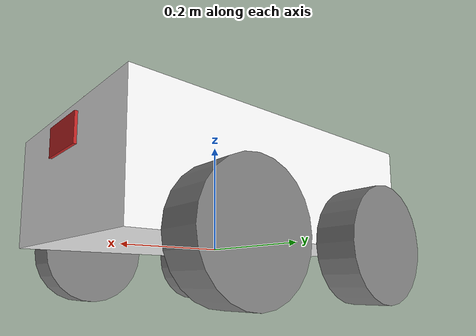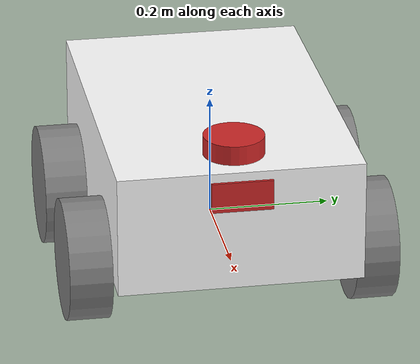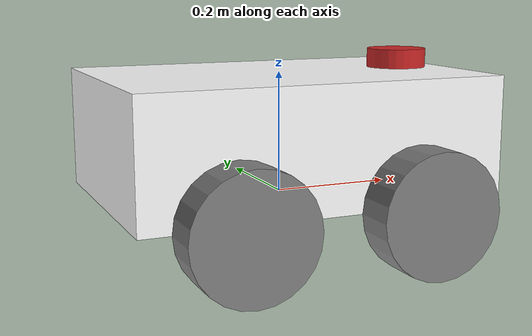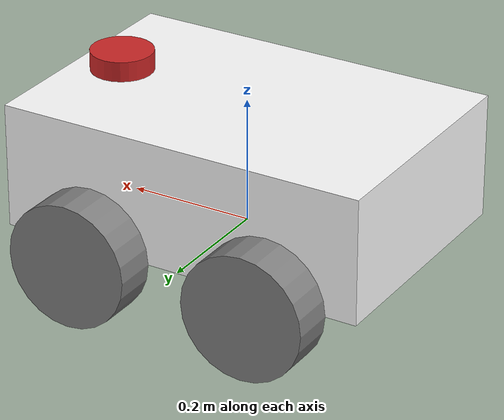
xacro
<?xml version="1.0"?>
<robot name="my_robot" xmlns:xacro="https://www.ros.org/wiki/xacro" >

    <xacro:include filename="common_properties.xacro" />
	<xacro:include filename="navcon_control.xacro" />

    <xacro:include filename="camera.xacro" />
    <xacro:include filename="laser.xacro" />

    <xacro:property name="base_length" value="0.6" />
    <xacro:property name="base_width" value="0.4" />
    <xacro:property name="base_height" value="0.2" />
    <xacro:property name="wheel_radius" value="0.1" />
    <xacro:property name="wheel_length" value="0.07" />

    <link name="base_footprint" />

    <link name="base_link">
        <visual>
            <geometry>
                <box size="${base_length} ${base_width} ${base_height}" />
            </geometry>
            <origin xyz="0 0 ${base_height / 2.0}" rpy="0 0 0" />
            <material name="white" />
        </visual>
        <collision>
            <geometry>
                <box size="${base_length} ${base_width} ${base_height}" />
            </geometry>
            <origin xyz="0 0 ${base_height / 2.0}" rpy="0 0 0" />
        </collision>
        <xacro:box_inertia m="5.0" l="${2*base_length}" w="${2*base_width}" h="${2*base_height}"
                           xyz="0 0 ${base_height / 2.0}" rpy="0 0 0" />
    </link>
    <xacro:macro name="wheel_link" params="prefix">
        <link name="${prefix}_wheel_link">
            <visual>
                <geometry>
                    <cylinder radius="${wheel_radius}" length="${wheel_length}" />
                </geometry>
                <origin xyz="0 0 0" rpy="${pi / 2.0} 0 0" />
                <material name="grey" />
            </visual>
            <collision>
                <geometry>
                    <cylinder radius="${wheel_radius}" length="${wheel_length}" />
                </geometry>
                <origin xyz="0 0 0" rpy="${pi / 2.0} 0 0" />
            </collision>
            <xacro:cylinder_inertia m="1.0" r="${2*wheel_radius}" h="${2*wheel_length}"
                                    xyz="0 0 0" rpy="${pi / 2.0} 0 0" />
        </link>

    </xacro:macro>

    <xacro:wheel_link prefix="str1_front_left"/>
    <xacro:wheel_link prefix="str2_front_right"/>
    <xacro:wheel_link prefix="right_front" />
    <xacro:wheel_link prefix="left_front" />
    <xacro:wheel_link prefix="right_back" />
    <xacro:wheel_link prefix="left_back" />

    <joint name="base_joint" type="fixed">
        <parent link="base_footprint" />
        <child link="base_link" />
        <origin xyz="0 0 0" rpy="0 0 0" />
    </joint>

    <joint name="base_right_back_wheel_joint" type="continuous">
        <parent link="base_link" />
        <child link="right_back_wheel_link" />
        <origin xyz="${-base_length / 4.0} ${-(base_width + wheel_length) / 2.0} 0" rpy="0 0 0" />
        <limit  effort="10" velocity="5000"/>
        <axis xyz="0 1 0" />
    </joint>

    <joint name="base_left_back_wheel_joint" type="continuous">
        <parent link="base_link" />
        <child link="left_back_wheel_link" />
        <origin xyz="${-base_length / 4.0} ${(base_width + wheel_length) / 2.0} 0" rpy="0 0 0" />
        <limit  effort="10" velocity="5000"/>
        <axis xyz="0 1 0" />
    </joint>

    <joint name="base_right_front_wheel_joint" type="continuous">
        <parent link="str2_front_right_wheel_link" />
        <child link="right_front_wheel_link" />
        <origin xyz="0 0 0" rpy="0 0 0" />
        <limit  effort="10" velocity="5000"/>
        <axis xyz="0 1 0" />
    </joint>

    <joint name="base_left_front_wheel_joint" type="continuous">
        <parent link="str1_front_left_wheel_link" />
        <child link="left_front_wheel_link" />
        <origin xyz="0 0 0" rpy="0 0 0" />
		<limit  effort="10" velocity="5000"/>
        <axis xyz="0 1 0" />
    </joint>

    <joint name="base_str1_front_left_joint" type="revolute">
		<limit lower="-0.30" upper="0.30" effort="100" velocity="100"/>
        <parent link="base_link" />
        <child link="str1_front_left_wheel_link" />
        <origin xyz="${base_length / 4.0} ${(base_width + wheel_length) / 2.0} 0" rpy="0 0 0" />
        <axis xyz="0 0 1" />

    </joint>

    <joint name="base_str2_front_right_joint" type="revolute">
        <parent link="base_link" />
		<limit lower="-0.30" upper="0.30" effort="100" velocity="100"/>
        <child link="str2_front_right_wheel_link" />
        <origin xyz="${base_length / 4.0} ${-(base_width + wheel_length) / 2.0} 0" rpy="0 0 0" />
        <axis xyz="0 0 1" />
    </joint>

	<link name="imu_link">
		<visual>
		  <geometry>
			<box size="0.1 0.1 0.1"/>
		  </geometry>
		</visual>

		<collision>
		  <geometry>
			<box size="0.1 0.1 0.1"/>
		  </geometry>
		</collision>

		<xacro:box_inertia m="0.1" w="0.1" l="0.1" h="0.1" xyz="0 0 0" rpy="0 0 0"/>
	  </link>

	  <joint name="imu_joint" type="fixed">
		<parent link="base_link"/>
		<child link="imu_link"/>
		<origin xyz="0 0 0.01"/>
	  </joint>

	  <gazebo reference="imu_link">
		<sensor name="imu_sensor" type="imu">
		  <plugin filename="libgazebo_ros_imu_sensor.so" name="imu_plugin">
			<ros>
			  <namespace>/demo</namespace>
			  <remapping>~/out:=imu</remapping>
			</ros>
			<initial_orientation_as_reference>false</initial_orientation_as_reference>
		  </plugin>
		  <always_on>true</always_on>
		  <update_rate>100</update_rate>
		  <visualize>true</visualize>
		  <imu>
			<angular_velocity>
			  <x>
				<noise type="gaussian">
				  <mean>0.0</mean>
				  <stddev>2e-4</stddev>
				  <bias_mean>0.0000075</bias_mean>
				  <bias_stddev>0.0000008</bias_stddev>
				</noise>
			  </x>
			  <y>
				<noise type="gaussian">
				  <mean>0.0</mean>
				  <stddev>2e-4</stddev>
				  <bias_mean>0.0000075</bias_mean>
				  <bias_stddev>0.0000008</bias_stddev>
				</noise>
			  </y>
			  <z>
				<noise type="gaussian">
				  <mean>0.0</mean>
				  <stddev>2e-4</stddev>
				  <bias_mean>0.0000075</bias_mean>
				  <bias_stddev>0.0000008</bias_stddev>
				</noise>
			  </z>
			</angular_velocity>
			<linear_acceleration>
			  <x>
				<noise type="gaussian">
				  <mean>0.0</mean>
				  <stddev>1.7e-2</stddev>
				  <bias_mean>0.1</bias_mean>
				  <bias_stddev>0.001</bias_stddev>
				</noise>
			  </x>
			  <y>
				<noise type="gaussian">
				  <mean>0.0</mean>
				  <stddev>1.7e-2</stddev>
				  <bias_mean>0.1</bias_mean>
				  <bias_stddev>0.001</bias_stddev>
				</noise>
			  </y>
			  <z>
				<noise type="gaussian">
				  <mean>0.0</mean>
				  <stddev>1.7e-2</stddev>
				  <bias_mean>0.1</bias_mean>
				  <bias_stddev>0.001</bias_stddev>
				</noise>
			  </z>
			</linear_acceleration>
		  </imu>
		</sensor>
	  </gazebo>

</robot>

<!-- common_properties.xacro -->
<robot xmlns:xacro="http://www.ros.org/wiki/xacro">

    <material name="white">
        <color rgba="1 1 1 1" />
    </material>

    <material name="grey">
        <color rgba="0.5 0.5 0.5 1"/>
    </material>

    <xacro:macro name="box_inertia" params="m l w h xyz rpy">
        <inertial>
            <origin xyz="${xyz}" rpy="${rpy}" />
            <mass value="${m}" />
            <inertia ixx="${(m/12) * (h*h + l*l)}" ixy="0" ixz="0"
                     iyy="${(m/12) * (w*w + l*l)}" iyz="0"
                     izz="${(m/12) * (w*w + h*h)}" />
        </inertial>
    </xacro:macro>

       <xacro:macro name="cylinder_inertia" params="m r h xyz rpy">
        <inertial>
            <origin xyz="${xyz}" rpy="${rpy}" />
            <mass value="${m}" />
            <inertia ixx="${(m/12) * (3*r*r + h*h)}" ixy="0" ixz="0"
                     iyy="${(m/12) * (3*r*r + h*h)}" iyz="0"
                     izz="${(m/2) * (r*r)}" />
        </inertial>
    </xacro:macro>

</robot>

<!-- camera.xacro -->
<robot xmlns:xacro="http://www.ros.org/wiki/xacro">

    <link name="camera_link">
        <visual>
            <geometry>
                <box size="0.01 0.1 0.05" />
            </geometry>
            <origin xyz="0 0 0.1" rpy="0 0 0" />
            <material name="red" />
        </visual>
        <collision>
            <geometry>
                <box size="0.01 0.1 0.05" />
            </geometry>
            <origin xyz="0 0 0.1" rpy="0 0 0" />
        </collision>
        <xacro:box_inertia m="0.01" l="0.01" w="0.1" h="0.05"
                           xyz="0 0 0.1" rpy="0 0 0" />
    </link>

    <joint name="camera_joint" type="fixed">
        <parent link="base_link" />
        <child link="camera_link" />
        <origin xyz="0.3 0 0.06" rpy="0 0 0" />
    </joint>

    <gazebo reference="camera_link">
        <material>Gazebo/Red</material>
        <sensor name="camera_sensor" type="camera">
            <pose>0 0 0 0 0 0</pose>
            <visualize>true</visualize>
            <update_rate>10.0</update_rate>
            <plugin name="camera_controller" filename="libgazebo_ros_camera.so">
                <frame_name>camera_link</frame_name>
            </plugin>
        </sensor>
    </gazebo>

</robot>

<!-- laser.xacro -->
<robot xmlns:xacro="http://www.ros.org/wiki/xacro" >

    <link name="laser_frame">
        <visual>
            <origin xyz="0.1 0 0"/>
            <geometry>
                <cylinder radius="0.05" length="0.04"/>
            </geometry>
            <material name="red"/>
        </visual>
        <collision>
            <geometry>
                <cylinder radius="0.05" length="0.04"/>
            </geometry>
        </collision>
    </link>

    <joint name="laser_joint" type="fixed">
        <parent link="base_link"/>
        <child link="laser_frame"/>
        <origin xyz="0.122 0 0.212" rpy="0 0 0"/>
    </joint>

    <gazebo reference="laser_frame">
        <material>Gazebo/Red</material>
        <sensor name="laser" type="ray">
            <pose> 0 0 0 0 0 0 </pose>
            <visualize>false</visualize>
            <update_rate>10</update_rate>
            <ray>
                <scan>
                    <horizontal>
                        <samples>360</samples>
                        <min_angle>-3.14</min_angle>
                        <max_angle>3.14</max_angle>
                    </horizontal>
                </scan>
                <range>
                    <min>0.3</min>
                    <max>5</max>
                </range>
            </ray>
            <plugin name="laser_controller" filename="libgazebo_ros_ray_sensor.so">
                <ros>
                    <argument>~/out:=scan</argument>
                </ros>
                <output_type>sensor_msgs/LaserScan</output_type>
                <frame_name>laser_frame</frame_name>
            </plugin>
        </sensor>
    </gazebo>

</robot>
